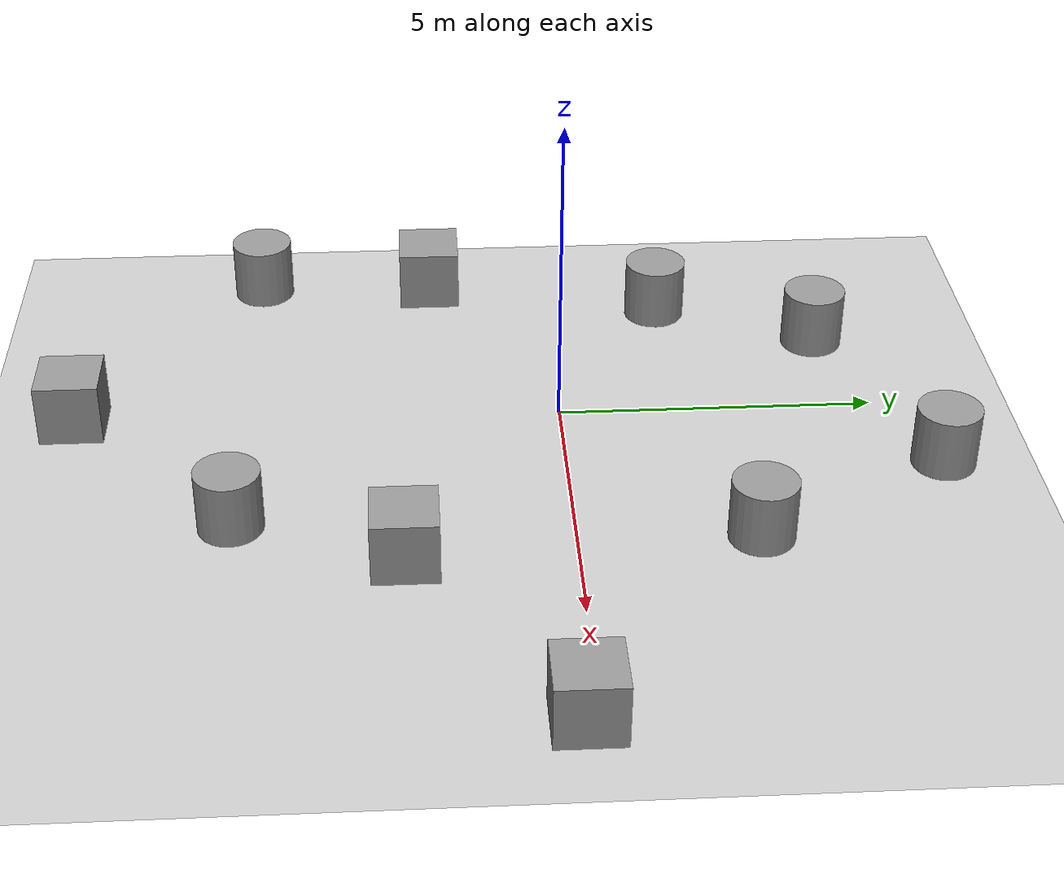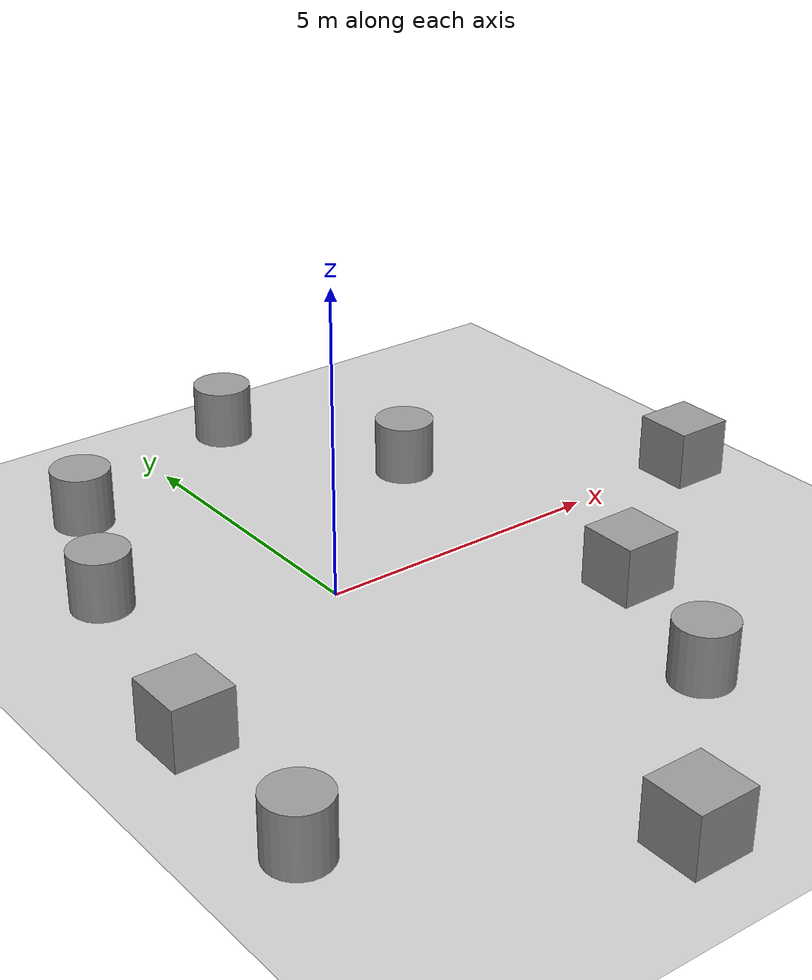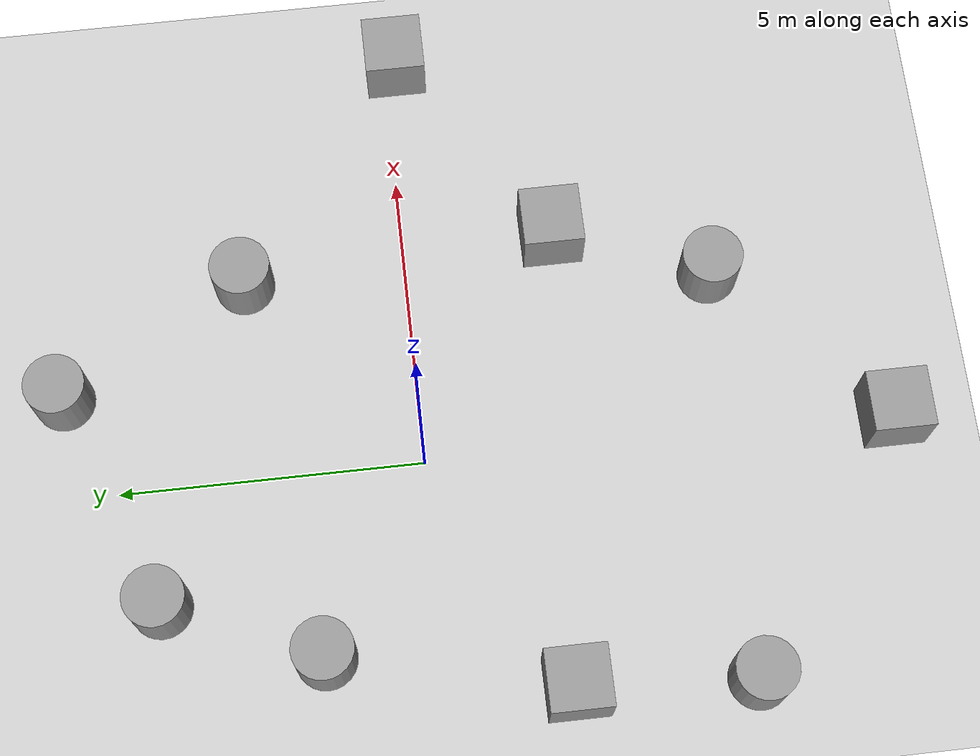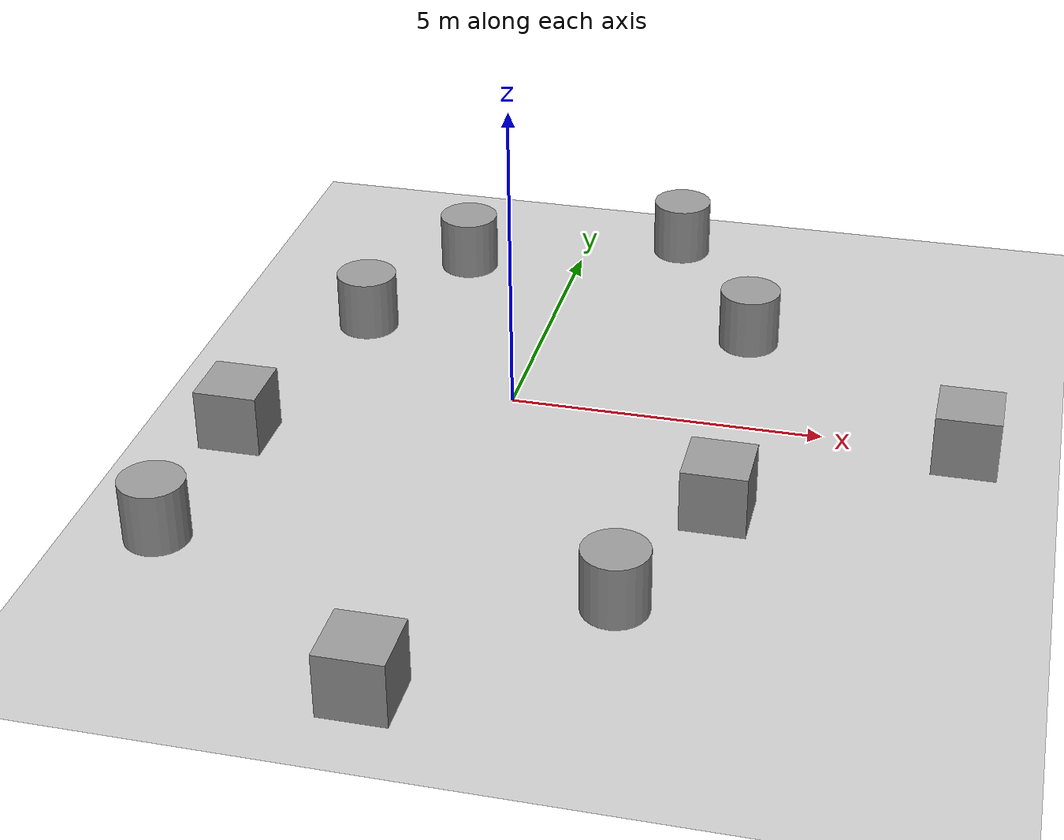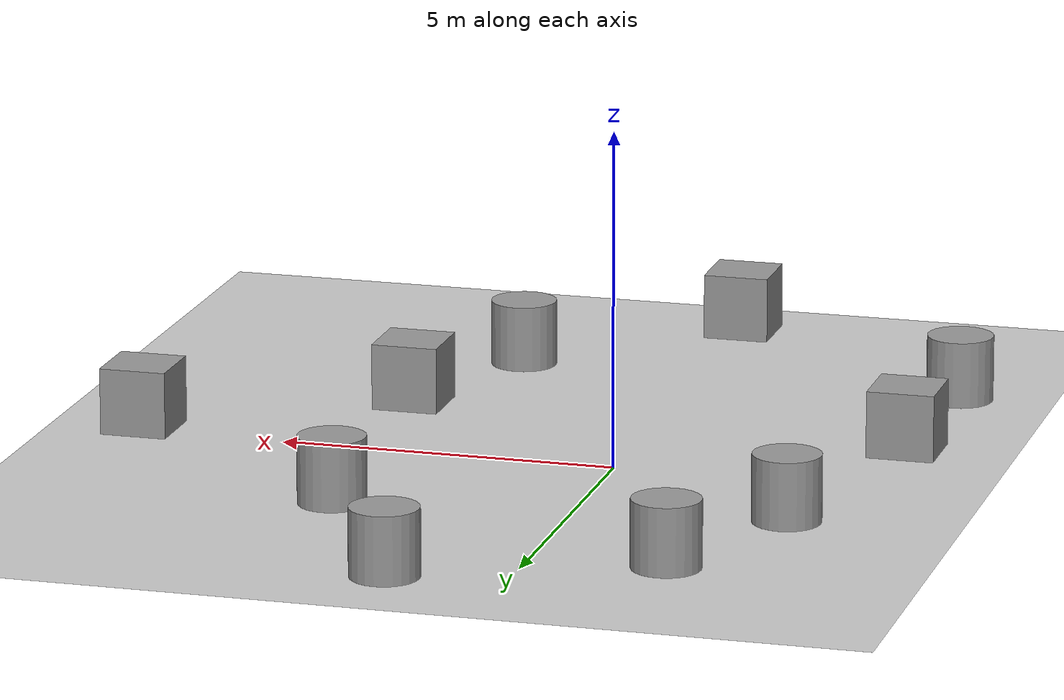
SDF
<sdf version="1.7">
 <world name="default">
  <light name="sun" type="directional">
   <pose>0 0 10 0 -0 0</pose>
   <diffuse>0.8 0.8 0.8 1</diffuse>
   <specular>0.2 0.2 0.2 1</specular>
   <attenuation>
    <range>1000</range>
    <constant>0.9</constant>
    <linear>0.01</linear>
    <quadratic>0.001</quadratic>
   </attenuation>
   <direction>-0.5 0.1 -0.9</direction>
   <spot><inner_angle>0</inner_angle><outer_angle>0</outer_angle><falloff>0</falloff></spot>
  </light>
  <model name="ground_plane">
   <static>1</static>
   <link name="link">
    <collision name="collision">
     <geometry><plane><normal>0 0 1</normal><size>100 100</size></plane></geometry>
     <surface><friction><ode><mu>100</mu><mu2>50</mu2></ode></friction></surface>
    </collision>
    <visual name="visual">
     <cast_shadows>0</cast_shadows>
     <geometry><plane><normal>0 0 1</normal><size>100 100</size></plane></geometry>
     <material>
      <script><uri>file://media/materials/scripts/gazebo.material</uri><name>Gazebo/Grey</name></script>
     </material>
    </visual>
   </link>
  </model>
  <gravity>0 0 -9.8</gravity>
  <magnetic_field>6e-06 2.3e-05 -4.2e-05</magnetic_field>
  <atmosphere type="adiabatic"/>
  <physics type="ode">
   <max_step_size>0.01</max_step_size>
   <real_time_factor>1</real_time_factor>
   <real_time_update_rate>0</real_time_update_rate>
  </physics>
  <scene><ambient>0.4 0.4 0.4 1</ambient><background>0.7 0.7 0.7 1</background><shadows>1</shadows></scene>
  <spherical_coordinates>
   <surface_model>EARTH_WGS84</surface_model>
   <latitude_deg>0</latitude_deg>
   <longitude_deg>0</longitude_deg>
   <elevation>0</elevation>
   <heading_deg>0</heading_deg>
  </spherical_coordinates>
  <model name="unit_cylinder">
   <pose>-1.92908 4.40062 0.499996 4e-06 2e-06 -0</pose>
   <link name="link">
    <inertial>
     <mass>1</mass>
     <inertia><ixx>0.145833</ixx><ixy>0</ixy><ixz>0</ixz><iyy>0.145833</iyy><iyz>0</iyz><izz>0.125</izz></inertia>
    </inertial>
    <collision name="collision">
     <geometry><cylinder><radius>0.5</radius><length>1</length></cylinder></geometry>
    </collision>
    <visual name="visual">
     <geometry><cylinder><radius>0.5</radius><length>1</length></cylinder></geometry>
     <material>
      <script><name>Gazebo/Grey</name><uri>file://media/materials/scripts/gazebo.material</uri></script>
     </material>
    </visual>
   </link>
  </model>
  <model name="unit_cylinder_0">
   <pose>-4.06939 -4.87299 0.499992 -3e-06 3e-06 0</pose>
   <link name="link">
    <inertial>
     <mass>1</mass>
     <inertia><ixx>0.145833</ixx><ixy>0</ixy><ixz>0</ixz><iyy>0.145833</iyy><iyz>0</iyz><izz>0.125</izz></inertia>
    </inertial>
    <collision name="collision">
     <geometry><cylinder><radius>0.5</radius><length>1</length></cylinder></geometry>
    </collision>
    <visual name="visual">
     <geometry><cylinder><radius>0.5</radius><length>1</length></cylinder></geometry>
     <material>
      <script><name>Gazebo/Grey</name><uri>file://media/materials/scripts/gazebo.material</uri></script>
     </material>
    </visual>
   </link>
  </model>
  <model name="unit_box">
   <pose>3.75883 -2.50795 0.499995 -1e-05 -0 -0</pose>
   <link name="link">
    <inertial>
     <mass>1</mass>
     <inertia>
      <ixx>0.166667</ixx>
      <ixy>0</ixy>
      <ixz>0</ixz>
      <iyy>0.166667</iyy>
      <iyz>0</iyz>
      <izz>0.166667</izz>
     </inertia>
    </inertial>
    <collision name="collision"><geometry><box><size>1 1 1</size></box></geometry></collision>
    <visual name="visual">
     <geometry><box><size>1 1 1</size></box></geometry>
     <material>
      <script><name>Gazebo/Grey</name><uri>file://media/materials/scripts/gazebo.material</uri></script>
     </material>
    </visual>
   </link>
  </model>
  <model name="unit_cylinder_1">
   <pose>3.41072 2.70631 0.499992 -3e-06 4e-06 0</pose>
   <link name="link">
    <inertial>
     <mass>1</mass>
     <inertia><ixx>0.145833</ixx><ixy>0</ixy><ixz>0</ixz><iyy>0.145833</iyy><iyz>0</iyz><izz>0.125</izz></inertia>
    </inertial>
    <collision name="collision">
     <geometry><cylinder><radius>0.5</radius><length>1</length></cylinder></geometry>
    </collision>
    <visual name="visual">
     <geometry><cylinder><radius>0.5</radius><length>1</length></cylinder></geometry>
     <material>
      <script><name>Gazebo/Grey</name><uri>file://media/materials/scripts/gazebo.material</uri></script>
     </material>
    </visual>
   </link>
  </model>
  <model name="unit_box_0">
   <pose>-3.89723 -1.9948 0.499995 -1e-05 -0 -0</pose>
   <link name="link">
    <inertial>
     <mass>1</mass>
     <inertia>
      <ixx>0.166667</ixx>
      <ixy>0</ixy>
      <ixz>0</ixz>
      <iyy>0.166667</iyy>
      <iyz>0</iyz>
      <izz>0.166667</izz>
     </inertia>
    </inertial>
    <collision name="collision"><geometry><box><size>1 1 1</size></box></geometry></collision>
    <visual name="visual">
     <geometry><box><size>1 1 1</size></box></geometry>
     <material>
      <script><name>Gazebo/Grey</name><uri>file://media/materials/scripts/gazebo.material</uri></script>
     </material>
    </visual>
   </link>
  </model>
  <model name="unit_cylinder_2">
   <pose>-3.02357 1.86239 0.499992 -3e-06 -4e-06 -0</pose>
   <link name="link">
    <inertial>
     <mass>1</mass>
     <inertia><ixx>0.145833</ixx><ixy>0</ixy><ixz>0</ixz><iyy>0.145833</iyy><iyz>0</iyz><izz>0.125</izz></inertia>
    </inertial>
    <collision name="collision">
     <geometry><cylinder><radius>0.5</radius><length>1</length></cylinder></geometry>
    </collision>
    <visual name="visual">
     <geometry><cylinder><radius>0.5</radius><length>1</length></cylinder></geometry>
     <material>
      <script><name>Gazebo/Grey</name><uri>file://media/materials/scripts/gazebo.material</uri></script>
     </material>
    </visual>
   </link>
  </model>
  <model name="unit_cylinder_3">
   <pose>2.76081 -5.0652 0.499993 -3e-06 -3e-06 0</pose>
   <link name="link">
    <inertial>
     <mass>1</mass>
     <inertia><ixx>0.145833</ixx><ixy>0</ixy><ixz>0</ixz><iyy>0.145833</iyy><iyz>0</iyz><izz>0.125</izz></inertia>
    </inertial>
    <collision name="collision">
     <geometry><cylinder><radius>0.5</radius><length>1</length></cylinder></geometry>
    </collision>
    <visual name="visual">
     <geometry><cylinder><radius>0.5</radius><length>1</length></cylinder></geometry>
     <material>
      <script><name>Gazebo/Grey</name><uri>file://media/materials/scripts/gazebo.material</uri></script>
     </material>
    </visual>
   </link>
  </model>
  <model name="unit_box_1">
   <pose>7.22497 -0.188314 0.499995 0 1e-05 0</pose>
   <link name="link">
    <inertial>
     <mass>1</mass>
     <inertia>
      <ixx>0.166667</ixx>
      <ixy>0</ixy>
      <ixz>0</ixz>
      <iyy>0.166667</iyy>
      <iyz>0</iyz>
      <izz>0.166667</izz>
     </inertia>
    </inertial>
    <collision name="collision"><geometry><box><size>1 1 1</size></box></geometry></collision>
    <visual name="visual">
     <geometry><box><size>1 1 1</size></box></geometry>
     <material>
      <script><name>Gazebo/Grey</name><uri>file://media/materials/scripts/gazebo.material</uri></script>
     </material>
    </visual>
   </link>
  </model>
  <model name="unit_box_2">
   <pose>-0.031631 -7.68792 0.499995 -1e-05 -0 0</pose>
   <link name="link">
    <inertial>
     <mass>1</mass>
     <inertia>
      <ixx>0.166667</ixx>
      <ixy>0</ixy>
      <ixz>0</ixz>
      <iyy>0.166667</iyy>
      <iyz>0</iyz>
      <izz>0.166667</izz>
     </inertia>
    </inertial>
    <collision name="collision"><geometry><box><size>1 1 1</size></box></geometry></collision>
    <visual name="visual">
     <geometry><box><size>1 1 1</size></box></geometry>
     <material>
      <script><name>Gazebo/Grey</name><uri>file://media/materials/scripts/gazebo.material</uri></script>
     </material>
    </visual>
   </link>
  </model>
  <model name="unit_cylinder_4">
   <pose>1.69372 5.8074 0.499997 3e-06 4e-06 -0</pose>
   <link name="link">
    <inertial>
     <mass>1</mass>
     <inertia><ixx>0.145833</ixx><ixy>0</ixy><ixz>0</ixz><iyy>0.145833</iyy><iyz>0</iyz><izz>0.125</izz></inertia>
    </inertial>
    <collision name="collision">
     <geometry><cylinder><radius>0.5</radius><length>1</length></cylinder></geometry>
    </collision>
    <visual name="visual">
     <geometry><cylinder><radius>0.5</radius><length>1</length></cylinder></geometry>
     <material>
      <script><name>Gazebo/Grey</name><uri>file://media/materials/scripts/gazebo.material</uri></script>
     </material>
    </visual>
   </link>
  </model>
 </world>
</sdf>
